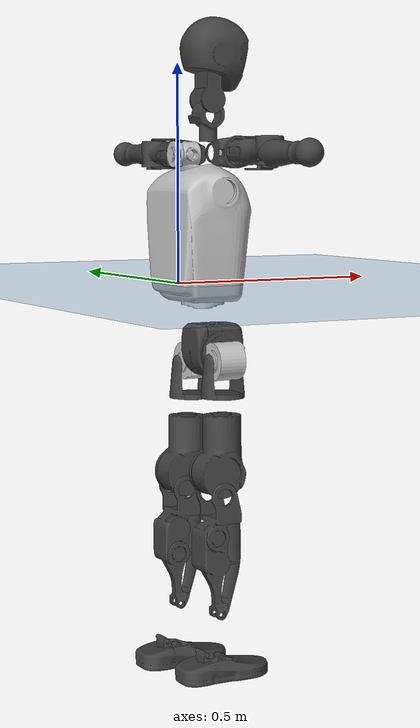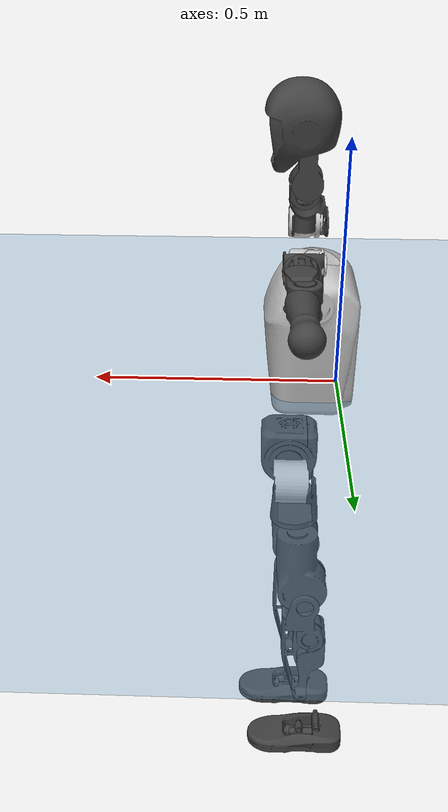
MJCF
<mujoco model="T1">
  <compiler angle="radian" assetdir="assets" balanceinertia="true" inertiafromgeom="false"/>

  <option timestep="0.005" density="1.2" viscosity="2e-05"/>

  <size nkey="1"/>

  <visual>
    <quality shadowsize="8192"/>
    <map shadowclip="0.5"/>
  </visual>

  <default>
    <default class="/">
      <joint armature="0.01" damping="0.01" frictionloss="0.1"/>
      <geom contype="0" conaffinity="0" group="1" solref="-1000 -80"/>
      <site size="0.01 0.005 0.005" group="5"/>
      <general forcelimited="true" biastype="affine" gainprm="25" biasprm="0 -25 -0.6"/>
      <default class="t1">
        <geom rgba="0.25 0.25 0.25 1"/>
        <default class="visual">
          <geom type="mesh" group="2"/>
        </default>
        <default class="collision">
          <geom group="3"/>
        </default>
        <default class="foot">
          <geom size="0.1115 0.05 0.015" type="box" condim="6" group="4" priority="1" solimp="0.015 1 0.015"/>
        </default>
        <default class="reward_collision_sphere">
          <geom group="5" rgba="1 0 0 1"/>
        </default>
      </default>
    </default>
  </default>

  <asset>
    <texture type="skybox" colorspace="auto" name="//unnamed_texture_0" builtin="gradient" rgb1="0.95 0.95 0.95" rgb2="0.95 0.95 0.95" width="100" height="600"/>
    <texture type="2d" colorspace="auto" name="texplane" builtin="checker" rgb1="0.345 0.575 0.748" rgb2="0.345 0.575 0.748" markrgb="1 1 1" width="512" height="512"/>
    <material name="MatPlane" class="/" texture="texplane" texuniform="true" texrepeat="2 2" specular="0.9"/>
    <mesh name="Trunk" class="/" file="Trunk.stl"/>
    <mesh name="H1" class="/" file="H1.stl"/>
    <mesh name="H2" class="/" file="H2.stl"/>
    <mesh name="AL1" class="/" file="AL1.stl"/>
    <mesh name="AL2" class="/" file="AL2.stl"/>
    <mesh name="AL3" class="/" file="AL3.stl"/>
    <mesh name="left_hand_link" class="/" file="left_hand_link.stl"/>
    <mesh name="AR1" class="/" file="AR1.stl"/>
    <mesh name="AR2" class="/" file="AR2.stl"/>
    <mesh name="AR3" class="/" file="AR3.stl"/>
    <mesh name="right_hand_link" class="/" file="right_hand_link.stl"/>
    <mesh name="Waist" class="/" file="Waist.stl"/>
    <mesh name="Hip_Pitch_Left" class="/" file="Hip_Pitch_Left.stl"/>
    <mesh name="Hip_Roll_Left" class="/" file="Hip_Roll_Left.stl"/>
    <mesh name="Hip_Yaw_Left" class="/" file="Hip_Yaw_Left.stl"/>
    <mesh name="Shank_Left" class="/" file="Shank_Left.stl"/>
    <mesh name="Ankle_Cross_Left" class="/" file="Ankle_Cross_Left.stl"/>
    <mesh name="left_foot_link" class="/" file="left_foot_link.stl"/>
    <mesh name="Hip_Pitch_Right" class="/" file="Hip_Pitch_Right.stl"/>
    <mesh name="Hip_Roll_Right" class="/" file="Hip_Roll_Right.stl"/>
    <mesh name="Hip_Yaw_Right" class="/" file="Hip_Yaw_Right.stl"/>
    <mesh name="Shank_Right" class="/" file="Shank_Right.stl"/>
    <mesh name="Ankle_Cross_Right" class="/" file="Ankle_Cross_Right.stl"/>
    <mesh name="right_foot_link" class="/" file="right_foot_link.stl"/>
  </asset>

  <worldbody>
    <geom name="floor" class="/" size="100 100 0.125" type="plane" group="0" material="MatPlane"/>
    <light name="toplight_shadow" class="/" pos="0 0 5" dir="0.0990148 0.0990148 -0.990148" type="directional" ambient="0.04 0.04 0.04" diffuse="0.55 0.55 0.55" specular="0.12 0.12 0.12"/>
    <light name="toplight_fill" class="/" pos="0 0 5" dir="0.0990148 0.0990148 -0.990148" type="directional" castshadow="false" ambient="0.04 0.04 0.04" diffuse="0.3 0.3 0.3" specular="0.08 0.08 0.08"/>
    <body name="trunk" childclass="t1" pos="0.000472239 2.97472e-05 -0.00693077" quat="1 7.49743e-05 0.000296139 -0.000227714">
      <inertial pos="0.0680006 0.00507474 0.143406" quat="0.999543 0.0147971 -0.020317 -0.016818" mass="16.4331" diaginertia="0.309962 0.0146436 0.259454"/>
      <joint name="//unnamed_joint_0" type="free" armature="0" damping="0" frictionloss="0"/>
      <geom name="//unnamed_geom_1" class="visual" rgba="0.76 0.76 0.76 1" mesh="Trunk"/>
      <geom name="//unnamed_geom_2" class="collision" size="0.0835384 0.111385 0.167077" pos="0.0770282 0 0.162106" type="box"/>
      <geom name="//unnamed_geom_3" class="reward_collision_sphere" size="0.128092" pos="0.0770282 0 0.135088"/>
      <geom name="//unnamed_geom_4" class="reward_collision_sphere" size="0.0167077" pos="0.0770282 0.0600825 0"/>
      <geom name="//unnamed_geom_5" class="reward_collision_sphere" size="0.0167077" pos="0.0770282 -0.0600825 0"/>
      <geom name="//unnamed_geom_6" class="reward_collision_sphere" size="0.0167077" pos="0.0770282 0.0756332 0.243158"/>
      <geom name="//unnamed_geom_7" class="reward_collision_sphere" size="0.0167077" pos="0.0770282 -0.0756332 0.243158"/>
      <site name="imu" pos="0.000110357 -0.0426779 0.0137115" size="0.0111385"/>
      <camera name="track" pos="0 -1.41371 0" quat="0.707107 0.707107 0 0" mode="trackcom"/>
      <camera name="ego_camera" pos="0.156624 0 0.567369" quat="-0.5 -0.5 0.5 0.5"/>
      <body name="H1" pos="0.0793407 0.00419104 0.329775" quat="0.999992 0.00253541 0.00135983 -0.00295204">
        <inertial pos="-0.00358213 -0.00239664 0.0746928" quat="0.763933 -0.00636557 0.00712682 0.645224" mass="0.692633" diaginertia="0.000899754 3.82337e-05 0.000695682"/>
        <joint name="AAHead_yaw" pos="0 0 0" axis="0.00735977 0.00563712 0.999957" range="-1.62568 1.36394" armature="0.0102366" damping="0.0377892" frictionloss="0.14117"/>
        <geom name="//unnamed_geom_8" class="visual" mesh="H1"/>
        <body name="H2" pos="-0.00162379 0.00131001 0.0953371" quat="0.999984 -0.00288574 0.00400512 -0.00287016">
          <inertial pos="0.0127749 -0.00514136 0.126376" quat="0.986574 0.103001 -0.0717711 -0.104455" mass="0.863956" diaginertia="0.00697426 0.000321141 0.00806113"/>
          <joint name="Head_pitch" pos="0 0 0" axis="-0.0313815 -0.999433 -0.0121671" stiffness="0.0255313" range="-1.23068 0.387267" armature="0.0121802" damping="0" frictionloss="0.121234"/>
          <geom name="//unnamed_geom_9" class="visual" mesh="H2"/>
          <geom name="//unnamed_geom_10" class="collision" size="0.0891076" pos="0.012838 0 0.148597"/>
          <geom name="//unnamed_geom_11" class="reward_collision_sphere" size="0.100246" pos="0.0256761 0 0.135088"/>
        </body>
      </body>
      <body name="AL1" pos="0.0795516 0.0774488 0.301581" quat="0.999999 -0.000775553 0.000563809 0.000591067">
        <inertial pos="-0.00254875 0.0364342 -0.000331653" quat="0.526173 0.46146 -0.495497 0.51447" mass="0.807806" diaginertia="0.00539216 0.000247606 0.00139568"/>
        <joint name="Left_Shoulder_Pitch" pos="0 0 0" axis="0.0204123 0.99976 -0.00790559" stiffness="0.0210149" range="-3.50354 1.24315" armature="0.0147828" damping="0.0299019" frictionloss="0.130069"/>
        <geom name="//unnamed_geom_12" class="visual" rgba="0.76 0.76 0.76 1" mesh="AL1"/>
        <body name="AL2" pos="0.00543237 0.0339427 0.00021408" quat="0.99999 0.00155874 0.00346779 0.00252336">
          <inertial pos="-0.00577661 0.0225006 -0.000391346" quat="0.497991 0.523078 -0.476288 0.501543" mass="0.240287" diaginertia="0.00152026 6.65637e-05 0.000885272"/>
          <joint name="Left_Shoulder_Roll" pos="0 0 0" axis="-0.999866 -0.0162454 0.00191214" range="-1.56727 1.74423" armature="0.00811495" damping="0" frictionloss="0.106532"/>
          <geom name="//unnamed_geom_13" class="visual" mesh="AL2"/>
          <body name="AL3" pos="0.00608946 0.0456856 -0.000106075" quat="0.999991 -7.9203e-05 0.00271073 0.00335427">
            <inertial pos="-0.00972411 0.0603282 -0.0039707" quat="0.701891 0.71011 -0.0537277 -0.0143863" mass="1.20781" diaginertia="0.0392865 0.00166511 0.0024552"/>
            <joint name="Left_Elbow_Pitch" pos="0 0 0" axis="0.00368998 -0.999988 -0.00310862" range="-2.30564 2.05768" armature="0.00704234" damping="0.0118395" frictionloss="0.0523592"/>
            <geom name="//unnamed_geom_14" class="visual" mesh="AL3"/>
            <geom name="//unnamed_geom_15" class="collision" size="0.0334154 0.0835384" pos="0 0.0353426 0" quat="0.707105 0.707108 0 0" type="cylinder"/>
            <geom name="//unnamed_geom_16" class="reward_collision_sphere" size="0.0400984"/>
            <body name="left_hand_link" pos="0.00545865 0.101182 0.00126868" quat="0.999987 -0.000676406 -0.00507421 0.000702955">
              <inertial pos="6.60919e-05 0.0710534 0.00214731" quat="0.706137 0.708072 0.00172553 -0.00126677" mass="0.480538" diaginertia="0.0252156 0.00132244 0.00108103"/>
              <joint name="Left_Elbow_Yaw" pos="0 0 0" axis="-0.0279357 0.0290805 0.999187" range="-2.3615 -0.21004" armature="0.0150563" damping="0.0474655" frictionloss="0.0885767"/>
              <geom name="//unnamed_geom_17" class="visual" mesh="left_hand_link"/>
              <geom name="//unnamed_geom_18" class="collision" size="0.0334154 0.0974614" pos="0 0.0918909 0" quat="0.707105 0.707108 0 0" type="cylinder"/>
              <geom name="//unnamed_geom_19" class="reward_collision_sphere" size="0.0556923"/>
              <geom name="//unnamed_geom_20" class="reward_collision_sphere" size="0.0389846" pos="0 0.0777538 0"/>
              <geom name="//unnamed_geom_21" class="reward_collision_sphere" size="0.0389846" pos="0 0.151973 0"/>
            </body>
          </body>
        </body>
      </body>
      <body name="AR1" pos="0.0734405 -0.0821356 0.305144" quat="1 -3.2058e-06 0.000696411 -5.91921e-05">
        <inertial pos="-5.59994e-05 -0.0235666 0.00208577" quat="0.508692 0.492683 -0.505466 0.492951" mass="0.691815" diaginertia="0.00466302 0.000239458 0.00128813"/>
        <joint name="Right_Shoulder_Pitch" pos="0 0 0" axis="0.0378605 -0.998508 0.0393592" stiffness="0.0172557" range="-1.2196 3.11805" armature="0.0111774" damping="0" frictionloss="0.167025"/>
        <geom name="//unnamed_geom_22" class="visual" rgba="0.76 0.76 0.76 1" mesh="AR1"/>
        <body name="AR2" pos="-0.0112279 -0.0236955 -0.000947161" quat="1 9.94507e-05 -0.00014506 0.000175341">
          <inertial pos="-0.00178886 -0.0260404 0.00202051" quat="0.511374 0.481666 -0.511512 0.494824" mass="0.171215" diaginertia="0.00121138 5.64068e-05 0.000685777"/>
          <joint name="Right_Shoulder_Roll" pos="0 0 0" axis="-0.999218 0.018667 -0.0348531" stiffness="0.0366226" range="-1.69985 1.43748" armature="0.0110092" damping="0.0449002" frictionloss="0.0688894"/>
          <geom name="//unnamed_geom_23" class="visual" mesh="AR2"/>
          <body name="AR3" pos="0.00818133 -0.0430489 0.00348391" quat="0.999998 -0.00128157 0.000769382 -0.00155404">
            <inertial pos="-0.0014978 -0.0675158 0.00302883" quat="0.711695 0.702328 0.0143737 -0.00430364" mass="1.09297" diaginertia="0.0380692 0.0019058 0.00234188"/>
            <joint name="Right_Elbow_Pitch" pos="0 0 0" axis="-0.00351999 0.999986 -0.00403508" stiffness="0.0582485" range="-2.12673 2.43205" armature="0.0104031" damping="0.00543662" frictionloss="0.105998"/>
            <geom name="//unnamed_geom_24" class="visual" mesh="AR3"/>
            <geom name="//unnamed_geom_25" class="collision" size="0.0334154 0.0835384" pos="0 -0.0353426 0" quat="0.707105 0.707108 0 0" type="cylinder"/>
            <geom name="//unnamed_geom_26" class="reward_collision_sphere" size="0.0400984"/>
            <body name="right_hand_link" pos="-0.00318568 -0.101613 -0.00533212" quat="1 -0.000147833 -0.000198652 7.74444e-05">
              <inertial pos="-0.00100223 -0.0760731 0.0109906" quat="0.697497 0.716153 0.021929 -0.0119033" mass="0.547289" diaginertia="0.0306987 0.00152276 0.00105535"/>
              <joint name="Right_Elbow_Yaw" pos="0 0 0" axis="-0.00652107 0.0300542 0.999527" stiffness="0.00239069" range="-0.0498133 2.27269" armature="0.0110627" damping="0.0132168" frictionloss="0.104309"/>
              <geom name="//unnamed_geom_27" class="visual" mesh="right_hand_link"/>
              <geom name="//unnamed_geom_28" class="collision" size="0.0334154 0.0974614" pos="0 -0.0918909 0" quat="0.707105 0.707108 0 0" type="cylinder"/>
              <geom name="//unnamed_geom_29" class="reward_collision_sphere" size="0.0556923"/>
              <geom name="//unnamed_geom_30" class="reward_collision_sphere" size="0.0389846" pos="0 -0.0777538 0"/>
              <geom name="//unnamed_geom_31" class="reward_collision_sphere" size="0.0389846" pos="0 -0.151973 0"/>
            </body>
          </body>
        </body>
      </body>
      <body name="Waist" pos="0.0921623 0.00808481 -0.156417" quat="0.999994 0.00114752 -0.00317337 -0.00105341">
        <inertial pos="0.0048282 0.00710622 0.0105172" quat="0.983669 -0.000146136 -0.179975 0.00187265" mass="3.72706" diaginertia="0.0211588 0.00106938 0.0250951"/>
        <joint name="Waist" pos="0 0 0" axis="0.00107822 0.0264815 0.999649" range="-1.60554 1.5435" armature="0.0101956" damping="0.0186889" frictionloss="0.165857"/>
        <geom name="//unnamed_geom_32" class="visual" mesh="Waist"/>
        <body name="Hip_Pitch_Left" pos="-0.00252979 0.0843563 -0.0073004" quat="0.999993 -0.0024159 0.00232682 0.00182621">
          <inertial pos="0.00316822 -0.00452202 -0.0252798" quat="0.97227 0.233861 -0.000116327 0.000686313" mass="1.41548" diaginertia="0.0066109 0.000233774 0.00616095"/>
          <joint name="Left_Hip_Pitch" pos="0 0 0" axis="0.001266 0.999999 -0.000133937" stiffness="0.0464343" range="-1.8173 1.53939" armature="0.011746" damping="0.0143845" frictionloss="0.0972528"/>
          <geom name="//unnamed_geom_33" class="visual" rgba="0.76 0.76 0.76 1" mesh="Hip_Pitch_Left"/>
          <body name="Hip_Roll_Left" pos="-0.00874527 -0.00115394 -0.0317445" quat="0.999984 -0.00254672 0.00406719 -0.00307258">
            <inertial pos="0.0108275 0.00759489 -0.0737086" quat="0.710769 -0.0410483 0.0353154 0.701338" mass="0.542558" diaginertia="0.00668775 0.000269274 0.00236503"/>
            <joint name="Left_Hip_Roll" pos="0 0 0" axis="-0.998406 -0.0290563 0.0483952" range="-1.43539 0.0158939" armature="0.00656706" damping="0.00764467" frictionloss="0.103816"/>
            <geom name="//unnamed_geom_34" class="visual" mesh="Hip_Roll_Left"/>
            <geom name="//unnamed_geom_35" class="reward_collision_sphere" size="0.0612615"/>
            <body name="Hip_Yaw_Left" pos="-0.0117923 -0.00136022 -0.118684" quat="0.999988 0.00240748 0.00308047 -0.00288632">
              <inertial pos="-0.00888632 -0.00144655 -0.1165" quat="0.696899 -0.0348428 -0.0329229 0.715565" mass="2.9615" diaginertia="0.0973927 0.0045268 0.0107355"/>
              <joint name="Left_Hip_Yaw" pos="0 0 0" axis="0.0151708 -0.0117668 -0.999816" range="-1.02065 1.2045" armature="0.0114995" damping="0.00183924" frictionloss="0.0909602"/>
              <geom name="//unnamed_geom_36" class="visual" mesh="Hip_Yaw_Left"/>
              <geom name="//unnamed_geom_37" class="collision" size="0.0556923 0.0891076" type="cylinder"/>
              <body name="Shank_Left" pos="-0.0208326 0.00189401 -0.170581" quat="0.999999 0.000657795 0.000153439 0.000815983">
                <inertial pos="-0.0154071 0.00860579 -0.167004" quat="0.997608 0.00101852 -0.0235974 0.0649712" mass="2.47949" diaginertia="0.122634 0.0064865 0.00828416"/>
                <joint name="Left_Knee_Pitch" pos="0 0 0" axis="-0.0305829 0.999532 0.000658336" range="-0.0916827 2.27873" armature="0.0122492" damping="0" frictionloss="0.11717"/>
                <geom name="//unnamed_geom_38" class="visual" mesh="Shank_Left"/>
                <geom name="//unnamed_geom_39" class="collision" size="0.0556923 0.0835384" pos="0 0 -0.162106" type="cylinder"/>
                <geom name="//unnamed_geom_40" class="reward_collision_sphere" size="0.0723999"/>
                <body name="Ankle_Cross_Left" pos="0.00139899 0.00410016 -0.388128" quat="0.999998 0.000406302 0.00111145 0.00182557">
                  <inertial pos="-0.0112339 -0.00178513 -0.00657337" quat="0.450248 0.548395 0.551295 0.438877" mass="0.091773" diaginertia="9.90778e-05 4.81549e-06 5.23379e-05"/>
                  <joint name="Left_Ankle_Pitch" pos="0 0 0" axis="-0.00185191 0.999849 -0.017284" range="-0.840093 0.313484" armature="0.0117475" damping="0" frictionloss="0.146712"/>
                  <geom name="//unnamed_geom_41" class="visual" mesh="Ankle_Cross_Left"/>
                  <body name="left_foot_link" pos="0.00128129 -0.00420416 -0.0111353" quat="1 -0.000111652 0.000196911 -0.000248431">
                    <inertial pos="-0.00248439 -0.0074676 -0.0139731" quat="0.0153834 0.637953 0.00281753 0.769917" mass="1.04112" diaginertia="0.0079253 0.000391246 0.00924793"/>
                    <joint name="Left_Ankle_Roll" pos="0 0 0" axis="-0.99968 -0.0200291 0.0154718" range="-0.403932 0.24445" armature="0.00560241" damping="0.00990242" frictionloss="0.0995793"/>
                    <geom name="//unnamed_geom_42" class="visual" mesh="left_foot_link"/>
                    <geom name="left_foot" class="foot" size="0.105451 0.0653611 0.0174147" pos="0.012838 0 -0.0202632"/>
                    <geom name="//unnamed_geom_44" class="reward_collision_sphere" size="0.0579199" pos="0.012838 0 -0.0202632"/>
                    <geom name="//unnamed_geom_45" class="reward_collision_sphere" size="0.0334154" pos="0.121961 -0.0162576 -0.0202632"/>
                    <geom name="//unnamed_geom_46" class="reward_collision_sphere" size="0.0334154" pos="-0.0898662 -0.0162576 -0.0202632"/>
                    <site name="left_foot" class="foot" pos="0.012838 0 -0.0202632" size="0.0111385"/>
                  </body>
                </body>
              </body>
            </body>
          </body>
        </body>
        <body name="Hip_Pitch_Right" pos="-0.008101 -0.0777854 0.0069208" quat="0.999999 -0.00039464 -0.000290462 0.000893938">
          <inertial pos="0.0093591 0.00503876 -0.0236963" quat="0.970306 -0.239727 0.0318802 0.00449197" mass="1.52675" diaginertia="0.00645085 0.000267075 0.0058814"/>
          <joint name="Right_Hip_Pitch" pos="0 0 0" axis="-0.00368029 -0.99998 0.00509106" stiffness="0.0177271" range="-1.5771 1.89233" armature="0.00488141" damping="0.00134827" frictionloss="0.132572"/>
          <geom name="//unnamed_geom_47" class="visual" rgba="0.76 0.76 0.76 1" mesh="Hip_Pitch_Right"/>
          <body name="Hip_Roll_Right" pos="-0.00137758 0.0044664 -0.0279591" quat="1 0.000632715 2.91826e-05 8.63136e-08">
            <inertial pos="0.00287819 0.00983435 -0.0658591" quat="0.674756 -0.00588939 -0.00457193 0.738003" mass="0.610616" diaginertia="0.00703001 0.000313426 0.00264075"/>
            <joint name="Right_Hip_Roll" pos="0 0 0" axis="-0.999982 -0.00016697 0.00606479" stiffness="0.00538887" range="-0.224726 1.56015" armature="0.0102269" damping="0.00810608" frictionloss="0.150854"/>
            <geom name="//unnamed_geom_48" class="visual" mesh="Hip_Roll_Right"/>
            <geom name="//unnamed_geom_49" class="reward_collision_sphere" size="0.0612615"/>
            <body name="Hip_Yaw_Right" pos="-0.00779366 -0.00411844 -0.115804" quat="0.999995 -0.00254422 -0.00198376 0.0006699">
              <inertial pos="-0.00855454 0.0111967 -0.123919" quat="0.709786 -0.0410042 -0.0322413 0.702484" mass="3.23202" diaginertia="0.101277 0.00504813 0.0135405"/>
              <joint name="Right_Hip_Yaw" pos="0 0 0" axis="0.0233778 0.00434039 -0.999717" range="-0.915283 0.845408" armature="0.0112891" damping="0" frictionloss="0.109301"/>
              <geom name="//unnamed_geom_50" class="visual" mesh="Hip_Yaw_Right"/>
              <geom name="//unnamed_geom_51" class="collision" size="0.0556923 0.0891076" type="cylinder"/>
              <body name="Shank_Right" pos="-0.018009 -0.00440946 -0.182994" quat="1 0.000285474 0.000128982 9.71641e-05">
                <inertial pos="-0.00921742 -0.00100891 -0.162544" quat="0.99927 0.000396939 -0.0230186 -0.0304772" mass="2.64257" diaginertia="0.154083 0.00694181 0.009709"/>
                <joint name="Right_Knee_Pitch" pos="0 0 0" axis="0.00991493 -0.999657 -0.0242418" stiffness="0.0408168" range="-2.42034 -0.0607758" armature="0.0111697" damping="0.00570384" frictionloss="0.121329"/>
                <geom name="//unnamed_geom_52" class="visual" mesh="Shank_Right"/>
                <geom name="//unnamed_geom_53" class="collision" size="0.0556923 0.0835384" pos="0 0 -0.162106" type="cylinder"/>
                <geom name="//unnamed_geom_54" class="reward_collision_sphere" size="0.0723999"/>
                <body name="Ankle_Cross_Right" pos="0.00207737 -0.00243862 -0.38202" quat="0.999993 -0.00106001 0.000513708 -0.0036601">
                  <inertial pos="-0.00409778 0.0017715 -0.00109898" quat="0.451514 0.508716 0.572311 0.458043" mass="0.109375" diaginertia="0.000127809 4.56809e-06 6.37971e-05"/>
                  <joint name="Right_Ankle_Pitch" pos="0 0 0" axis="0.0284267 -0.99926 0.0259249" stiffness="0.0381357" range="-0.47461 0.821738" armature="0.0114474" damping="0.0392929" frictionloss="0.152841"/>
                  <geom name="//unnamed_geom_55" class="visual" mesh="Ankle_Cross_Right"/>
                  <body name="right_foot_link" pos="-0.000530865 0.00173647 -0.0208042" quat="0.999999 -0.0010377 -0.000373246 -0.000708489">
                    <inertial pos="0.0110907 0.00626413 -0.0116964" quat="0.0163088 0.608258 -0.0218394 0.793271" mass="0.936015" diaginertia="0.00946419 0.000424821 0.0107092"/>
                    <joint name="Right_Ankle_Roll" pos="0 0 0" axis="-0.999996 -0.00168427 -0.00219197" range="-0.434751 0.4695" armature="0.00893341" damping="0" frictionloss="0.121138"/>
                    <geom name="//unnamed_geom_56" class="visual" mesh="right_foot_link"/>
                    <geom name="right_foot" class="foot" size="0.095315 0.0467395 0.0154677" pos="0.012838 0 -0.0202632"/>
                    <geom name="//unnamed_geom_58" class="reward_collision_sphere" size="0.0445538"/>
                    <geom name="//unnamed_geom_59" class="reward_collision_sphere" size="0.0334154" pos="0.012838 0 -0.0202632"/>
                    <geom name="//unnamed_geom_60" class="reward_collision_sphere" size="0.0334154" pos="0.121961 0.0162576 -0.0202632"/>
                    <geom name="//unnamed_geom_61" class="reward_collision_sphere" size="0.0334154" pos="-0.0898662 0.0162576 -0.0202632"/>
                    <site name="right_foot" class="foot" pos="0.012838 0 -0.0202632" size="0.0111385"/>
                  </body>
                </body>
              </body>
            </body>
          </body>
        </body>
      </body>
    </body>
  </worldbody>

  <contact>
    <pair class="/" geom1="floor" geom2="left_foot" name="//unnamed_contact_0"/>
    <pair class="/" geom1="floor" geom2="right_foot" name="//unnamed_contact_1"/>
  </contact>

  <actuator>
    <general name="AAHead_yaw" class="/" joint="AAHead_yaw" forcerange="-6.04092 6.04092" gainprm="28.2829" biasprm="0 -28.2829 -0.752443"/>
    <general name="Head_pitch" class="/" joint="Head_pitch" forcerange="-5.89452 5.89452" gainprm="28.2829" biasprm="0 -28.2829 -0.752443"/>
    <general name="Left_Shoulder_Pitch" class="/" joint="Left_Shoulder_Pitch" forcerange="-21.9782 21.9782" gainprm="28.2829" biasprm="0 -28.2829 -0.752443"/>
    <general name="Left_Shoulder_Roll" class="/" joint="Left_Shoulder_Roll" forcerange="-20.2196 20.2196" gainprm="28.2829" biasprm="0 -28.2829 -0.752443"/>
    <general name="Left_Elbow_Pitch" class="/" joint="Left_Elbow_Pitch" forcerange="-13.0522 13.0522" gainprm="28.2829" biasprm="0 -28.2829 -0.752443"/>
    <general name="Left_Elbow_Yaw" class="/" joint="Left_Elbow_Yaw" forcerange="-24.3488 24.3488" gainprm="28.2829" biasprm="0 -28.2829 -0.752443"/>
    <general name="Right_Shoulder_Pitch" class="/" joint="Right_Shoulder_Pitch" forcerange="-27.855 27.855" gainprm="28.2829" biasprm="0 -28.2829 -0.752443"/>
    <general name="Right_Shoulder_Roll" class="/" joint="Right_Shoulder_Roll" forcerange="-18.5977 18.5977" gainprm="28.2829" biasprm="0 -28.2829 -0.752443"/>
    <general name="Right_Elbow_Pitch" class="/" joint="Right_Elbow_Pitch" forcerange="-12.8043 12.8043" gainprm="28.2829" biasprm="0 -28.2829 -0.752443"/>
    <general name="Right_Elbow_Yaw" class="/" joint="Right_Elbow_Yaw" forcerange="-17.9548 17.9548" gainprm="28.2829" biasprm="0 -28.2829 -0.752443"/>
    <general name="Waist" class="/" joint="Waist" forcerange="-34.344 34.344" gainprm="28.2829" biasprm="0 -28.2829 -0.752443"/>
    <general name="Left_Hip_Pitch" class="/" joint="Left_Hip_Pitch" forcerange="-54.1951 54.1951" gainprm="28.2829" biasprm="0 -28.2829 -0.752443"/>
    <general name="Left_Hip_Roll" class="/" joint="Left_Hip_Roll" forcerange="-22.2984 22.2984" gainprm="28.2829" biasprm="0 -28.2829 -0.752443"/>
    <general name="Left_Hip_Yaw" class="/" joint="Left_Hip_Yaw" forcerange="-47.2065 47.2065" gainprm="28.2829" biasprm="0 -28.2829 -0.752443"/>
    <general name="Left_Knee_Pitch" class="/" joint="Left_Knee_Pitch" forcerange="-48.9918 48.9918" gainprm="28.2829" biasprm="0 -28.2829 -0.752443"/>
    <general name="Left_Ankle_Pitch" class="/" joint="Left_Ankle_Pitch" forcerange="-32.3278 32.3278" gainprm="28.2829" biasprm="0 -28.2829 -0.752443"/>
    <general name="Left_Ankle_Roll" class="/" joint="Left_Ankle_Roll" forcerange="-15.7325 15.7325" gainprm="28.2829" biasprm="0 -28.2829 -0.752443"/>
    <general name="Right_Hip_Pitch" class="/" joint="Right_Hip_Pitch" forcerange="-49.8822 49.8822" gainprm="28.2829" biasprm="0 -28.2829 -0.752443"/>
    <general name="Right_Hip_Roll" class="/" joint="Right_Hip_Roll" forcerange="-39.1886 39.1886" gainprm="28.2829" biasprm="0 -28.2829 -0.752443"/>
    <general name="Right_Hip_Yaw" class="/" joint="Right_Hip_Yaw" forcerange="-39.1441 39.1441" gainprm="28.2829" biasprm="0 -28.2829 -0.752443"/>
    <general name="Right_Knee_Pitch" class="/" joint="Right_Knee_Pitch" forcerange="-46.5225 46.5225" gainprm="28.2829" biasprm="0 -28.2829 -0.752443"/>
    <general name="Right_Ankle_Pitch" class="/" joint="Right_Ankle_Pitch" forcerange="-18.1028 18.1028" gainprm="28.2829" biasprm="0 -28.2829 -0.752443"/>
    <general name="Right_Ankle_Roll" class="/" joint="Right_Ankle_Roll" forcerange="-22.7949 22.7949" gainprm="28.2829" biasprm="0 -28.2829 -0.752443"/>
  </actuator>

  <sensor>
    <gyro site="imu" name="imu_angular_velocity"/>
    <velocimeter site="imu" name="imu_linear_velocity"/>
    <framelinvel objtype="site" objname="left_foot" name="left_foot_global_linear_velocity"/>
    <framelinvel objtype="site" objname="right_foot" name="right_foot_global_linear_velocity"/>
  </sensor>

  <keyframe>
    <key name="home" qpos="0 0 0.6385 1 0 0 0 0 0 0 1.4 0 -0.4 0 -1.4 0 0.4 0 -0.4 0 0 0.8 -0.4 0 0.4 0 0 -0.8 0.4 0"/>
  </keyframe>
</mujoco>
